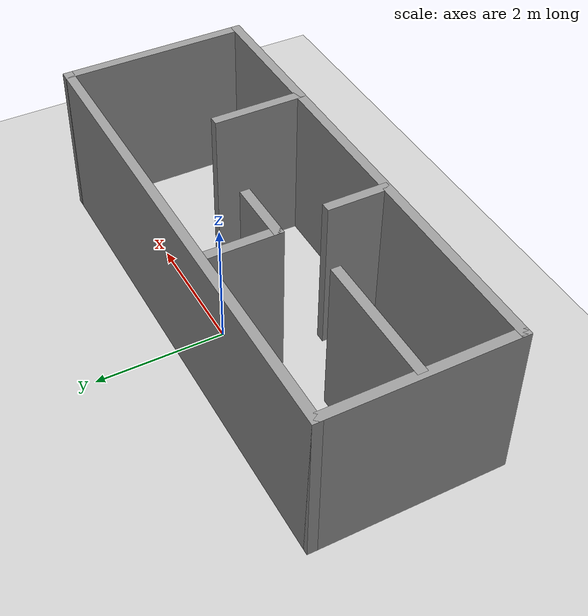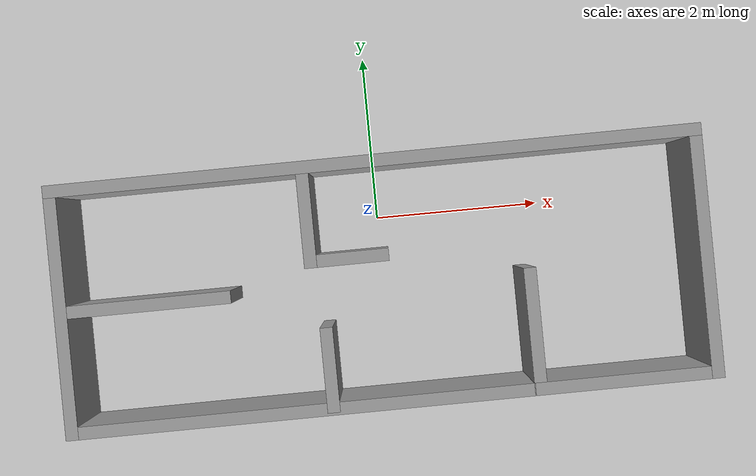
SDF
<sdf version="1.7">
 <world name="default">
  <light name="sun" type="directional">
   <pose>0 0 10 0 -0 0</pose>
   <diffuse>0.8 0.8 0.8 1</diffuse>
   <specular>0.2 0.2 0.2 1</specular>
   <attenuation>
    <range>1000</range>
    <constant>0.9</constant>
    <linear>0.01</linear>
    <quadratic>0.001</quadratic>
   </attenuation>
   <direction>-0.5 0.1 -0.9</direction>
   <spot><inner_angle>0</inner_angle><outer_angle>0</outer_angle><falloff>0</falloff></spot>
  </light>
  <model name="ground_plane">
   <static>1</static>
   <link name="link">
    <collision name="collision">
     <geometry><plane><normal>0 0 1</normal><size>100 100</size></plane></geometry>
     <surface>
      <contact><collide_bitmask>65535</collide_bitmask></contact>
      <friction><ode><mu>100</mu><mu2>50</mu2></ode></friction>
     </surface>
    </collision>
    <visual name="visual">
     <cast_shadows>0</cast_shadows>
     <geometry><plane><normal>0 0 1</normal><size>100 100</size></plane></geometry>
     <material>
      <script><uri>file://media/materials/scripts/gazebo.material</uri><name>Gazebo/Grey</name></script>
     </material>
    </visual>
   </link>
  </model>
  <gravity>0 0 -9.8</gravity>
  <magnetic_field>6e-06 2.3e-05 -4.2e-05</magnetic_field>
  <atmosphere type="adiabatic"/>
  <physics type="ode">
   <max_step_size>0.001</max_step_size>
   <real_time_factor>1</real_time_factor>
   <real_time_update_rate>1000</real_time_update_rate>
  </physics>
  <scene><ambient>0.4 0.4 0.4 1</ambient><background>0.7 0.7 0.7 1</background><shadows>1</shadows></scene>
  <audio><device>default</device></audio>
  <spherical_coordinates>
   <surface_model>EARTH_WGS84</surface_model>
   <latitude_deg>0</latitude_deg>
   <longitude_deg>0</longitude_deg>
   <elevation>0</elevation>
   <heading_deg>0</heading_deg>
  </spherical_coordinates>
  <model name="maailm">
   <link name="Wall_0">
    <collision name="Wall_0_Collision">
     <geometry><box><size>7.75 0.15 2.5</size></box></geometry>
     <pose>0 0 1.25 0 -0 0</pose>
    </collision>
    <visual name="Wall_0_Visual">
     <pose>0 0 1.25 0 -0 0</pose>
     <geometry><box><size>7.75 0.15 2.5</size></box></geometry>
     <material>
      <script><uri>file://media/materials/scripts/gazebo.material</uri><name>Gazebo/Grey</name></script>
      <ambient>1 1 1 1</ambient>
     </material>
     <meta><layer>0</layer></meta>
    </visual>
    <pose>0 0.6675 0 0 -0 0</pose>
   </link>
   <link name="Wall_1">
    <collision name="Wall_1_Collision">
     <geometry><box><size>3 0.15 2.5</size></box></geometry>
     <pose>0 0 1.25 0 -0 0</pose>
    </collision>
    <visual name="Wall_1_Visual">
     <pose>0 0 1.25 0 -0 0</pose>
     <geometry><box><size>3 0.15 2.5</size></box></geometry>
     <material>
      <script><uri>file://media/materials/scripts/gazebo.material</uri><name>Gazebo/Grey</name></script>
      <ambient>1 1 1 1</ambient>
     </material>
     <meta><layer>0</layer></meta>
    </visual>
    <pose>3.8 -0.7575 0 0 -0 -1.5708</pose>
   </link>
   <link name="Wall_10">
    <collision name="Wall_10_Collision">
     <geometry><box><size>1.25 0.15 2.5</size></box></geometry>
     <pose>0 0 1.25 0 -0 0</pose>
    </collision>
    <visual name="Wall_10_Visual">
     <pose>0 0 1.25 0 -0 0</pose>
     <geometry><box><size>1.25 0.15 2.5</size></box></geometry>
     <material>
      <script><uri>file://media/materials/scripts/gazebo.material</uri><name>Gazebo/Grey</name></script>
      <ambient>1 1 1 1</ambient>
     </material>
     <meta><layer>0</layer></meta>
    </visual>
    <pose>-0.83 0.1075 0 0 -0 -1.5708</pose>
   </link>
   <link name="Wall_11">
    <collision name="Wall_11_Collision">
     <geometry><box><size>1 0.15 2.5</size></box></geometry>
     <pose>0 0 1.25 0 -0 0</pose>
    </collision>
    <visual name="Wall_11_Visual">
     <pose>0 0 1.25 0 -0 0</pose>
     <geometry><box><size>1 0.15 2.5</size></box></geometry>
     <material>
      <script><uri>file://media/materials/scripts/gazebo.material</uri><name>Gazebo/Grey</name></script>
      <ambient>1 1 1 1</ambient>
     </material>
     <meta><layer>0</layer></meta>
    </visual>
    <pose>-0.405 -0.4425 0 0 -0 0</pose>
   </link>
   <link name="Wall_13">
    <collision name="Wall_13_Collision">
     <geometry><box><size>1 0.15 2.5</size></box></geometry>
     <pose>0 0 1.25 0 -0 0</pose>
    </collision>
    <visual name="Wall_13_Visual">
     <pose>0 0 1.25 0 -0 0</pose>
     <geometry><box><size>1 0.15 2.5</size></box></geometry>
     <material>
      <script><uri>file://media/materials/scripts/gazebo.material</uri><name>Gazebo/Grey</name></script>
      <ambient>1 1 1 1</ambient>
     </material>
     <meta><layer>0</layer></meta>
    </visual>
    <pose>-0.72 -1.7275 0 0 -0 1.5708</pose>
   </link>
   <link name="Wall_2">
    <collision name="Wall_2_Collision">
     <geometry><box><size>2.22 0.15 2.5</size></box></geometry>
     <pose>0 0 1.25 0 -0 0</pose>
    </collision>
    <visual name="Wall_2_Visual">
     <pose>0 0 1.25 0 -0 0</pose>
     <geometry><box><size>2.22 0.15 2.5</size></box></geometry>
     <material>
      <script><uri>file://media/materials/scripts/gazebo.material</uri><name>Gazebo/Grey</name></script>
      <ambient>1 1 1 1</ambient>
     </material>
     <meta><layer>0</layer></meta>
    </visual>
    <pose>2.765 -2.1825 0 0 -0 3.14159</pose>
   </link>
   <link name="Wall_3">
    <collision name="Wall_3_Collision">
     <geometry><box><size>1.5 0.15 2.5</size></box></geometry>
     <pose>0 0 1.25 0 -0 0</pose>
    </collision>
    <visual name="Wall_3_Visual">
     <pose>0 0 1.25 0 -0 0</pose>
     <geometry><box><size>1.5 0.15 2.5</size></box></geometry>
     <material>
      <script><uri>file://media/materials/scripts/gazebo.material</uri><name>Gazebo/Grey</name></script>
      <ambient>1 1 1 1</ambient>
     </material>
     <meta><layer>0</layer></meta>
    </visual>
    <pose>1.72 -1.5075 0 0 -0 1.5708</pose>
   </link>
   <link name="Wall_5">
    <collision name="Wall_5_Collision">
     <geometry><box><size>3 0.15 2.5</size></box></geometry>
     <pose>0 0 1.25 0 -0 0</pose>
    </collision>
    <visual name="Wall_5_Visual">
     <pose>0 0 1.25 0 -0 0</pose>
     <geometry><box><size>3 0.15 2.5</size></box></geometry>
     <material>
      <script><uri>file://media/materials/scripts/gazebo.material</uri><name>Gazebo/Grey</name></script>
      <ambient>1 1 1 1</ambient>
     </material>
     <meta><layer>0</layer></meta>
    </visual>
    <pose>-3.8 -0.7575 0 0 -0 -1.5708</pose>
   </link>
   <link name="Wall_6">
    <collision name="Wall_6_Collision">
     <geometry><box><size>5.68 0.15 2.5</size></box></geometry>
     <pose>0 0 1.25 0 -0 0</pose>
    </collision>
    <visual name="Wall_6_Visual">
     <pose>0 0 1.25 0 -0 0</pose>
     <geometry><box><size>5.68 0.15 2.5</size></box></geometry>
     <material>
      <script><uri>file://media/materials/scripts/gazebo.material</uri><name>Gazebo/Grey</name></script>
      <ambient>1 1 1 1</ambient>
     </material>
     <meta><layer>0</layer></meta>
    </visual>
    <pose>-1.035 -2.1825 0 0 -0 0</pose>
   </link>
   <link name="Wall_8">
    <collision name="Wall_8_Collision">
     <geometry><box><size>2 0.15 2.5</size></box></geometry>
     <pose>0 0 1.25 0 -0 0</pose>
    </collision>
    <visual name="Wall_8_Visual">
     <pose>0 0 1.25 0 -0 0</pose>
     <geometry><box><size>2 0.15 2.5</size></box></geometry>
     <material>
      <script><uri>file://media/materials/scripts/gazebo.material</uri><name>Gazebo/Grey</name></script>
      <ambient>1 1 1 1</ambient>
     </material>
     <meta><layer>0</layer></meta>
    </visual>
    <pose>-2.795 -0.7625 0 0 -0 0</pose>
   </link>
   <static>1</static>
  </model>
 </world>
</sdf>
